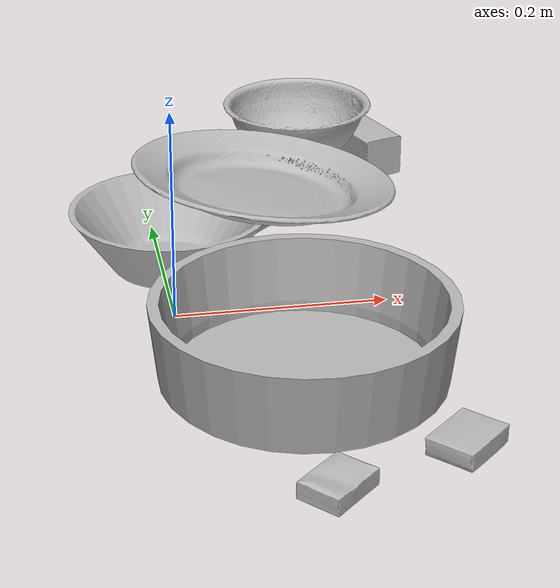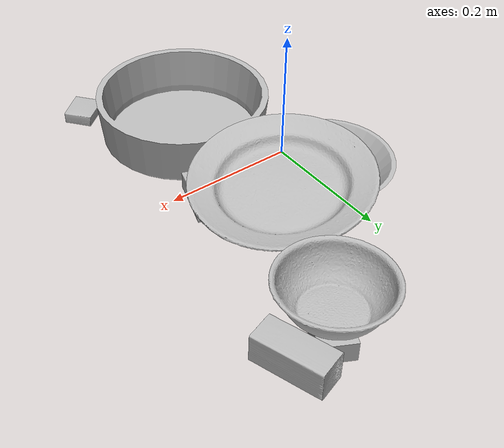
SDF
<sdf version="1.4">
  <world name="default">
    <light name="light1" type="point">
      <pose>0 0 1 0 0 0</pose>
      <diffuse>3 3 3 1</diffuse>
      <specular>3 3 3 1</specular>
    </light>
    <light name="light2" type="point">
      <pose>0 0.5 2 0 0 0</pose>
      <diffuse>1 1 1 1</diffuse>
      <specular>1 1 1 1</specular>
    </light>
    <light name="light3" type="point">
      <pose>0 0.5 2 0 0 0</pose>
      <diffuse>3 3 3 1</diffuse>
      <specular>3 3 3 1</specular>
    </light>
    <scene>
      <ambient>0.7 0.7 0.7</ambient>
    </scene>
    <model name="box1">
      <link name="link_box1">
        <collision name="default">
          <geometry>
            <mesh>
              <uri>model://jenga/collision_meshes/collision.obj</uri>
              <scale>1.0 1.0 1.0</scale>
            </mesh>
          </geometry>
          <surface>
            <friction>
              <ode>
                <mu>0.5</mu>
                <mu2>0.5</mu2>
              </ode>
            </friction>
          <contact>
        <ode>
            <max_vel>0</max_vel>
            <min_depth>0.0001</min_depth>
            <kp>1e8</kp>
        </ode>
    </contact></surface>
        </collision>
        <visual name="default">
          <geometry>
            <mesh>
              <uri>model://jenga/visual_meshes/visual.dae</uri>
              <scale>1.0 1.0 1.0</scale>
            </mesh>
          </geometry>
        </visual>
        <inertial>
          <mass>0.22956150770187378</mass>
          <pose>-2.502855807051674e-07 -0.00010250010382151231 -4.0923401684267446e-05 0.0 -7.34215461761844e-07 0.0</pose>
          <inertia>
            <ixx>6.3525236e-05</ixx>
            <iyy>0.00043044525</iyy>
            <izz>0.0004595369</izz>
            <ixy>0</ixy>
            <ixz>0</ixz>
            <iyz>0</iyz>
          </inertia>
        </inertial>
      </link>
      <pose>0.17172668874263763 0.2965511977672577 0.015000048093497753 5.179552122077824e-07 6.035928070177597e-07 -2.0414061789907327</pose>
    </model>
    <model name="box11">
      <link name="link_box11">
        <collision name="default">
          <geometry>
            <mesh>
              <uri>model://gelatin_box/collision_meshes/collision.obj</uri>
              <scale>1.0 1.0 1.0</scale>
            </mesh>
          </geometry>
          <surface>
            <friction>
              <ode>
                <mu>0.5</mu>
                <mu2>0.5</mu2>
              </ode>
            </friction>
          <contact>
        <ode>
            <max_vel>0</max_vel>
            <min_depth>0.0001</min_depth>
            <kp>1e8</kp>
        </ode>
    </contact></surface>
        </collision>
        <visual name="default">
          <geometry>
            <mesh>
              <uri>model://gelatin_box/visual_meshes/visual.dae</uri>
              <scale>1.0 1.0 1.0</scale>
            </mesh>
          </geometry>
        </visual>
        <inertial>
          <mass>0.23979201912879944</mass>
          <pose>0.00043196187471039593 0.00011156872642459348 -0.0003640321083366871 -0.0010503717361155602 -0.00475581776093882 0.016440559470502904</pose>
          <inertia>
            <ixx>0.00016927361</ixx>
            <iyy>0.000120911245</iyy>
            <izz>0.00025767216</izz>
            <ixy>0</ixy>
            <ixz>0</ixz>
            <iyz>0</iyz>
          </inertia>
        </inertial>
      </link>
      <pose>0.15143217146396637 0.031549207866191864 0.015168317593634129 0.005597482476902363 -0.007304555220386081 -0.3190182178535989</pose>
    </model>
    <model name="box2">
      <link name="link_box2">
        <collision name="default">
          <geometry>
            <mesh>
              <uri>model://wood_block/collision_meshes/collision.obj</uri>
              <scale>0.5 0.5 0.5</scale>
            </mesh>
          </geometry>
          <surface>
            <friction>
              <ode>
                <mu>0.5</mu>
                <mu2>0.5</mu2>
              </ode>
            </friction>
          <contact>
        <ode>
            <max_vel>0</max_vel>
            <min_depth>0.0001</min_depth>
            <kp>1e8</kp>
        </ode>
    </contact></surface>
        </collision>
        <visual name="default">
          <geometry>
            <mesh>
              <uri>model://wood_block/visual_meshes/visual.dae</uri>
              <scale>0.5 0.5 0.5</scale>
            </mesh>
          </geometry>
        </visual>
        <inertial>
          <mass>0.1620619148015976</mass>
          <pose>-2.9066577553749084e-06 -0.000285404734313488 0.00013204291462898254 -0.05221116986778199 -0.0051926948812571205 -0.006861377876233232</pose>
          <inertia>
            <ixx>5.421584e-05</ixx>
            <iyy>0.00017126785</iyy>
            <izz>0.00017062723</izz>
            <ixy>0</ixy>
            <ixz>0</ixz>
            <iyz>0</iyz>
          </inertia>
        </inertial>
      </link>
      <pose>0.2534254193305969 0.3404443562030792 0.022629208862781525 -0.005198257031102405 0.00571973839892419 1.8924758177811518</pose>
    </model>
    <model name="box21">
      <link name="link_box21">
        <collision name="default">
          <geometry>
            <mesh>
              <uri>model://cracker_box/collision_meshes/collision.obj</uri>
              <scale>0.25 0.25 0.25</scale>
            </mesh>
          </geometry>
          <surface>
            <friction>
              <ode>
                <mu>0.5</mu>
                <mu2>0.5</mu2>
              </ode>
            </friction>
          <contact>
        <ode>
            <max_vel>0</max_vel>
            <min_depth>0.0001</min_depth>
            <kp>1e8</kp>
        </ode>
    </contact></surface>
        </collision>
        <visual name="default">
          <geometry>
            <mesh>
              <uri>model://cracker_box/visual_meshes/visual.dae</uri>
              <scale>0.25 0.25 0.25</scale>
            </mesh>
          </geometry>
        </visual>
        <inertial>
          <mass>0.053346797823905945</mass>
          <pose>0.0002366035187151283 6.358561950037256e-05 -0.00042573839891701937 -0.0003162075101960104 -0.011106487737771283 0.002546795233856971</pose>
          <inertia>
            <ixx>8.4806525e-06</ixx>
            <iyy>1.40032225e-05</iyy>
            <izz>1.9983887e-05</izz>
            <ixy>0</ixy>
            <ixz>0</ixz>
            <iyz>0</iyz>
          </inertia>
        </inertial>
      </link>
      <pose>0.08646627515554428 -0.30480730533599854 0.009096029214560986 -0.014050530223191809 -0.005016683920343022 0.7288014568055456</pose>
    </model>
    <model name="box3">
      <link name="link_box3">
        <collision name="default">
          <geometry>
            <mesh>
              <uri>model://pudding_box/collision_meshes/collision.obj</uri>
              <scale>0.5 0.5 0.5</scale>
            </mesh>
          </geometry>
          <surface>
            <friction>
              <ode>
                <mu>0.5</mu>
                <mu2>0.5</mu2>
              </ode>
            </friction>
          <contact>
        <ode>
            <max_vel>0</max_vel>
            <min_depth>0.0001</min_depth>
            <kp>1e8</kp>
        </ode>
    </contact></surface>
        </collision>
        <visual name="default">
          <geometry>
            <mesh>
              <uri>model://pudding_box/visual_meshes/visual.dae</uri>
              <scale>0.5 0.5 0.5</scale>
            </mesh>
          </geometry>
        </visual>
        <inertial>
          <mass>0.03981568291783333</mass>
          <pose>0.00024474109522998333 0.00040339428232982755 -0.00025944141088984907 0.005213101343760943 -0.0066037982384193495 0.020079821436446477</pose>
          <inertia>
            <ixx>1.1252395e-05</ixx>
            <iyy>7.5706907e-06</iyy>
            <izz>1.6617103e-05</izz>
            <ixy>0</ixy>
            <ixz>0</ixz>
            <iyz>0</iyz>
          </inertia>
        </inertial>
      </link>
      <pose>0.1997525691986084 -0.26441434025764465 0.009862898848950863 0.02234832933228586 -0.011391792528126755 -0.8569590360635025</pose>
    </model>
    <model name="box31">
      <link name="link_box31">
        <collision name="default">
          <geometry>
            <mesh>
              <uri>model://sugar_box/collision_meshes/collision.obj</uri>
              <scale>0.5 0.5 0.5</scale>
            </mesh>
          </geometry>
          <surface>
            <friction>
              <ode>
                <mu>0.5</mu>
                <mu2>0.5</mu2>
              </ode>
            </friction>
          <contact>
        <ode>
            <max_vel>0</max_vel>
            <min_depth>0.0001</min_depth>
            <kp>1e8</kp>
        </ode>
    </contact></surface>
        </collision>
        <visual name="default">
          <geometry>
            <mesh>
              <uri>model://sugar_box/visual_meshes/visual.dae</uri>
              <scale>0.5 0.5 0.5</scale>
            </mesh>
          </geometry>
        </visual>
        <inertial>
          <mass>0.09878891706466675</mass>
          <pose>0.0005171863595023751 1.924554817378521e-05 -0.00018182402709499002 -0.0004046259508743568 0.001050663638168667 0.0026153790219137513</pose>
          <inertia>
            <ixx>2.0577656e-05</ixx>
            <iyy>6.651122e-05</iyy>
            <izz>7.9621874e-05</izz>
            <ixy>0</ixy>
            <ixz>0</ixz>
            <iyz>0</iyz>
          </inertia>
        </inertial>
      </link>
      <pose>0.10082417726516724 0.18985043466091156 0.01139931008219719 0.0007757869711150745 -0.0234329002890354 -2.3438448090080817</pose>
    </model>
    <model name="plate1">
      <link name="link_plate1">
        <collision name="default">
          <geometry>
            <mesh>
              <uri>model://pan_tefal/collision_meshes/collision.obj</uri>
              <scale>1.0 1.0 1.0</scale>
            </mesh>
          </geometry>
          <surface>
            <friction>
              <ode>
                <mu>0.5</mu>
                <mu2>0.5</mu2>
              </ode>
            </friction>
          <contact>
        <ode>
            <max_vel>0</max_vel>
            <min_depth>0.0001</min_depth>
            <kp>1e8</kp>
        </ode>
    </contact></surface>
        </collision>
        <visual name="default">
          <geometry>
            <mesh>
              <uri>model://pan_tefal/visual_meshes/visual.dae</uri>
              <scale>1.0 1.0 1.0</scale>
            </mesh>
          </geometry>
        </visual>
        <inertial>
          <mass>1.1273940801620483</mass>
          <pose>-0.00018001534044742584 3.279306838521734e-05 -0.00851493701338768 0.0008190361817388816 -0.00033014848142065665 -0.3318599615030245</pose>
          <inertia>
            <ixx>0.007782347</ixx>
            <iyy>0.00783252</iyy>
            <izz>0.014325799</izz>
            <ixy>0</ixy>
            <ixz>0</ixz>
            <iyz>0</iyz>
          </inertia>
        </inertial>
      </link>
      <pose>0.09484299272298813 -0.13090015947818756 0.0379859060049057 -0.00039201328155366393 -0.00037513040870867573 -0.31022138240761554</pose>
    </model>
    <model name="bowl1">
      <link name="link_bowl1">
        <collision name="default">
          <geometry>
            <mesh>
              <uri>model://bowl_a/collision_meshes/collision.obj</uri>
              <scale>1.0 1.0 1.0</scale>
            </mesh>
          </geometry>
          <surface>
            <friction>
              <ode>
                <mu>0.5</mu>
                <mu2>0.5</mu2>
              </ode>
            </friction>
          <contact>
        <ode>
            <max_vel>0</max_vel>
            <min_depth>0.0001</min_depth>
            <kp>1e8</kp>
        </ode>
    </contact></surface>
        </collision>
        <visual name="default">
          <geometry>
            <mesh>
              <uri>model://bowl_a/visual_meshes/visual.dae</uri>
              <scale>1.0 1.0 1.0</scale>
            </mesh>
          </geometry>
        </visual>
        <inertial>
          <mass>0.3873887062072754</mass>
          <pose>0.00027867493918165565 4.731054286821745e-05 -0.0013765293406322598 -0.0009805472575270138 -0.0010938146264646796 -0.19122952428204854</pose>
          <inertia>
            <ixx>0.0011029133</ixx>
            <iyy>0.0011096848</iyy>
            <izz>0.001961574</izz>
            <ixy>0</ixy>
            <ixz>0</ixz>
            <iyz>0</iyz>
          </inertia>
        </inertial>
      </link>
      <pose>0.00985774490982294 0.11014919728040695 0.030383512377738953 9.164073610949965e-07 1.1201611672632861e-05 -0.8969833459359793</pose>
    </model>
    <model name="plate2">
      <link name="link_plate2">
        <collision name="default">
          <geometry>
            <mesh>
              <uri>model://plate/collision_meshes/collision.obj</uri>
              <scale>1.0 1.0 1.0</scale>
            </mesh>
          </geometry>
          <surface>
            <friction>
              <ode>
                <mu>0.5</mu>
                <mu2>0.5</mu2>
              </ode>
            </friction>
          <contact>
        <ode>
            <max_vel>0</max_vel>
            <min_depth>0.0001</min_depth>
            <kp>1e8</kp>
        </ode>
    </contact></surface>
        </collision>
        <visual name="default">
          <geometry>
            <mesh>
              <uri>model://plate/visual_meshes/visual.dae</uri>
              <scale>1.0 1.0 1.0</scale>
            </mesh>
          </geometry>
        </visual>
        <inertial>
          <mass>0.13866961002349854</mass>
          <pose>-0.0006044620531611145 0.0002782586379908025 -0.0010561972158029675 0.0022187857877866432 -0.0032254843385796767 0.452609315183835</pose>
          <inertia>
            <ixx>0.0006486992</ixx>
            <iyy>0.0006424946</iyy>
            <izz>0.0012687586</izz>
            <ixy>0</ixy>
            <ixz>0</ixz>
            <iyz>0</iyz>
          </inertia>
        </inertial>
      </link>
      <pose>0.10426253825426102 0.12735795974731445 0.07246311008930206 -0.13189301069870155 0.019053439914639047 -1.1406221910220462</pose>
    </model>
    <model name="bowl2">
      <link name="link_bowl2">
        <collision name="default">
          <geometry>
            <mesh>
              <uri>model://bowl/collision_meshes/collision.obj</uri>
              <scale>1.0 1.0 1.0</scale>
            </mesh>
          </geometry>
          <surface>
            <friction>
              <ode>
                <mu>0.5</mu>
                <mu2>0.5</mu2>
              </ode>
            </friction>
          <contact>
        <ode>
            <max_vel>0</max_vel>
            <min_depth>0.0001</min_depth>
            <kp>1e8</kp>
        </ode>
    </contact></surface>
        </collision>
        <visual name="default">
          <geometry>
            <mesh>
              <uri>model://bowl/visual_meshes/visual.dae</uri>
              <scale>1.0 1.0 1.0</scale>
            </mesh>
          </geometry>
        </visual>
        <inertial>
          <mass>0.04854629561305046</mass>
          <pose>0.00020445325935725123 -0.0010302069131284952 -0.0008042645058594644 -0.015764106240563104 0.014546770392749554 0.7140394241749954</pose>
          <inertia>
            <ixx>0.00011151466</ixx>
            <iyy>0.00010902299</iyy>
            <izz>0.00018760598</izz>
            <ixy>0</ixy>
            <ixz>0</ixz>
            <iyz>0</iyz>
          </inertia>
        </inertial>
      </link>
      <pose>0.176164448261261 0.31827041506767273 0.057788580656051636 -0.00027810140285249415 0.00035656858969187577 2.0488560495236676</pose>
    </model>
  <physics type="ode">
      <max_contacts>50</max_contacts>
      <ode>
        <solver>
          <type>quick</type>
          <iters>75</iters>
        </solver>
        <constraints>
          <contact_max_correcting_vel>0</contact_max_correcting_vel>
          <contact_surface_layer>0</contact_surface_layer>
        </constraints>
      </ode>
    </physics></world>
</sdf>
